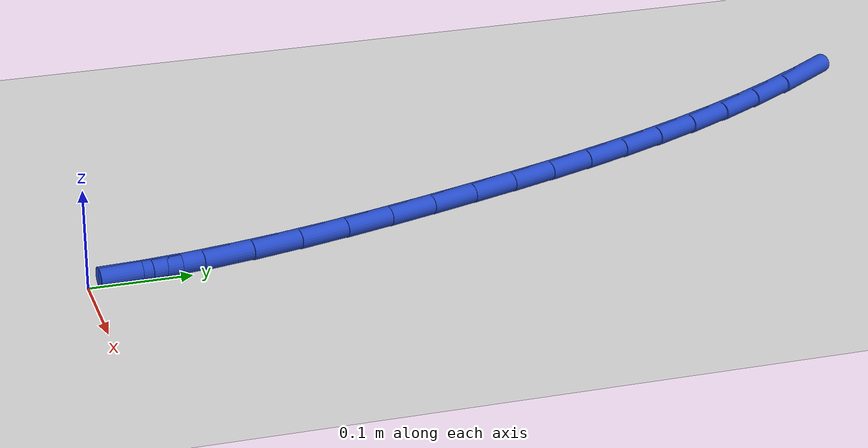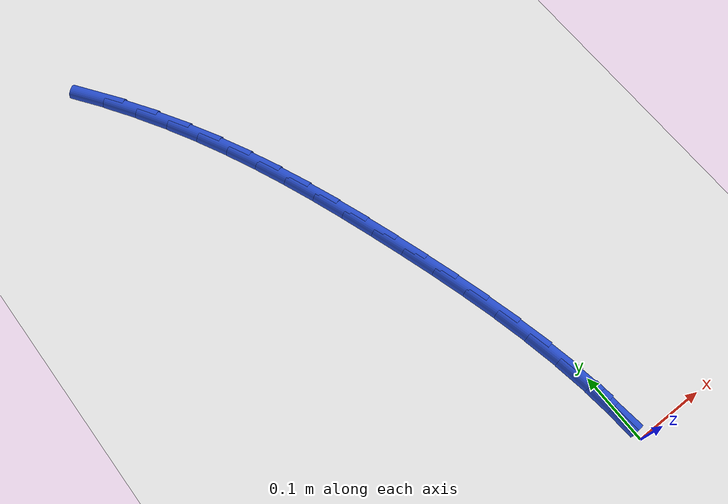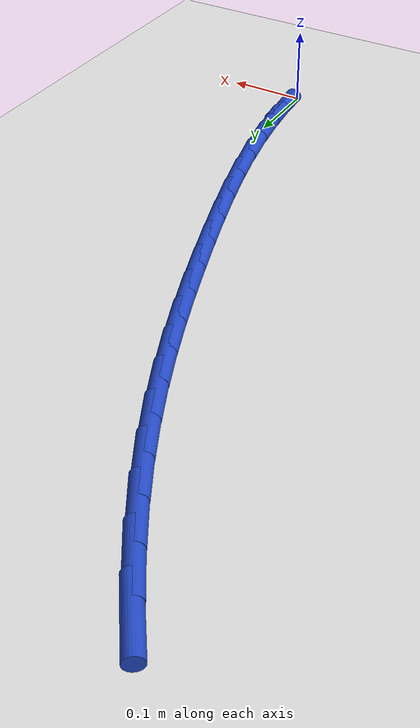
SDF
<sdf version="1.6">
 <world name="default">
  <model name="ground_plane">
   <static>1</static>
   <link name="link">
    <collision name="collision">
     <geometry><plane><normal>0 0 1</normal><size>100 100</size></plane></geometry>
     <surface><friction><ode><mu>100</mu><mu2>50</mu2></ode></friction></surface>
    </collision>
    <visual name="visual">
     <cast_shadows>0</cast_shadows>
     <geometry><plane><normal>0 0 1</normal><size>100 100</size></plane></geometry>
     <material>
      <script><uri>file://media/materials/scripts/gazebo.material</uri><name>Gazebo/WhiteGlow</name></script>
     </material>
    </visual>
   </link>
  </model>
  <model name="line">
   <link name="link_1">
    <pose>-0.0030384677710128165 0.050301003999730205 0.01 0 1.57 -1.455969346754686</pose>
    <collision name="collision">
     <geometry><cylinder><radius>0.01</radius><length>0.08</length></cylinder></geometry>
    </collision>
    <visual name="visual">
     <material>
      <script><name>Gazebo/Blue</name><uri>file://media/materials/scripts/gazebo.material</uri></script>
     </material>
     <geometry><cylinder><radius>0.01</radius><length>0.08</length></cylinder></geometry>
    </visual>
   </link>
   <link name="link_2">
    <pose>-0.008818111228535732 0.10041308665040802 0.01 0 1.57 -1.4082257853372324</pose>
    <collision name="collision">
     <geometry><cylinder><radius>0.01</radius><length>0.08</length></cylinder></geometry>
    </collision>
    <visual name="visual">
     <material>
      <script><name>Gazebo/Blue</name><uri>file://media/materials/scripts/gazebo.material</uri></script>
     </material>
     <geometry><cylinder><radius>0.01</radius><length>0.08</length></cylinder></geometry>
    </visual>
   </link>
   <link name="link_3">
    <pose>-0.016990717426067944 0.15024056780476108 0.01 0 1.57 -1.3670323966876647</pose>
    <collision name="collision">
     <geometry><cylinder><radius>0.01</radius><length>0.08</length></cylinder></geometry>
    </collision>
    <visual name="visual">
     <material>
      <script><name>Gazebo/Blue</name><uri>file://media/materials/scripts/gazebo.material</uri></script>
     </material>
     <geometry><cylinder><radius>0.01</radius><length>0.08</length></cylinder></geometry>
    </visual>
   </link>
   <link name="link_4">
    <pose>-0.0272080734171087 0.19968776731551696 0.01 0 1.57 -1.332149021264324</pose>
    <collision name="collision">
     <geometry><cylinder><radius>0.01</radius><length>0.08</length></cylinder></geometry>
    </collision>
    <visual name="visual">
     <material>
      <script><name>Gazebo/Blue</name><uri>file://media/materials/scripts/gazebo.material</uri></script>
     </material>
     <geometry><cylinder><radius>0.01</radius><length>0.08</length></cylinder></geometry>
    </visual>
   </link>
   <link name="link_5">
    <pose>-0.039121966255157195 0.24865900503540295 0.01 0 1.57 -1.303346064127017</pose>
    <collision name="collision">
     <geometry><cylinder><radius>0.01</radius><length>0.08</length></cylinder></geometry>
    </collision>
    <visual name="visual">
     <material>
      <script><name>Gazebo/Blue</name><uri>file://media/materials/scripts/gazebo.material</uri></script>
     </material>
     <geometry><cylinder><radius>0.01</radius><length>0.08</length></cylinder></geometry>
    </visual>
   </link>
   <link name="link_6">
    <pose>-0.052384182993712704 0.2970586008171468 0.01 0 1.57 -1.28044226873742</pose>
    <collision name="collision">
     <geometry><cylinder><radius>0.01</radius><length>0.08</length></cylinder></geometry>
    </collision>
    <visual name="visual">
     <material>
      <script><name>Gazebo/Blue</name><uri>file://media/materials/scripts/gazebo.material</uri></script>
     </material>
     <geometry><cylinder><radius>0.01</radius><length>0.08</length></cylinder></geometry>
    </visual>
   </link>
   <link name="link_7">
    <pose>-0.0666465106862744 0.34479087451347584 0.01 0 1.57 -1.2633341415838295</pose>
    <collision name="collision">
     <geometry><cylinder><radius>0.01</radius><length>0.08</length></cylinder></geometry>
    </collision>
    <visual name="visual">
     <material>
      <script><name>Gazebo/Blue</name><uri>file://media/materials/scripts/gazebo.material</uri></script>
     </material>
     <geometry><cylinder><radius>0.01</radius><length>0.08</length></cylinder></geometry>
    </visual>
   </link>
   <link name="link_8">
    <pose>-0.08156073638634156 0.3917601459771177 0.01 0 1.57 -1.251466192862059</pose>
    <collision name="collision">
     <geometry><cylinder><radius>0.01</radius><length>0.08</length></cylinder></geometry>
    </collision>
    <visual name="visual">
     <material>
      <script><name>Gazebo/Blue</name><uri>file://media/materials/scripts/gazebo.material</uri></script>
     </material>
     <geometry><cylinder><radius>0.01</radius><length>0.08</length></cylinder></geometry>
    </visual>
   </link>
   <link name="link_9">
    <pose>-0.09681104614175311 0.43788289748606046 0.01 0 1.57 -1.2386897921610731</pose>
    <collision name="collision">
     <geometry><cylinder><radius>0.01</radius><length>0.08</length></cylinder></geometry>
    </collision>
    <visual name="visual">
     <material>
      <script><name>Gazebo/Blue</name><uri>file://media/materials/scripts/gazebo.material</uri></script>
     </material>
     <geometry><cylinder><radius>0.01</radius><length>0.08</length></cylinder></geometry>
    </visual>
   </link>
   <link name="link_10">
    <pose>-0.11244404119998534 0.48321166022563466 0.01 0 1.57 -1.2211372713598931</pose>
    <collision name="collision">
     <geometry><cylinder><radius>0.01</radius><length>0.08</length></cylinder></geometry>
    </collision>
    <visual name="visual">
     <material>
      <script><name>Gazebo/Blue</name><uri>file://media/materials/scripts/gazebo.material</uri></script>
     </material>
     <geometry><cylinder><radius>0.01</radius><length>0.08</length></cylinder></geometry>
    </visual>
   </link>
   <link name="link_11">
    <pose>-0.1287335579118084 0.5278842683363002 0.01 0 1.57 -1.1988873354360097</pose>
    <collision name="collision">
     <geometry><cylinder><radius>0.01</radius><length>0.08</length></cylinder></geometry>
    </collision>
    <visual name="visual">
     <material>
      <script><name>Gazebo/Blue</name><uri>file://media/materials/scripts/gazebo.material</uri></script>
     </material>
     <geometry><cylinder><radius>0.01</radius><length>0.08</length></cylinder></geometry>
    </visual>
   </link>
   <link name="link_12">
    <pose>-0.1459569348872716 0.5720398706896564 0.01 0 1.57 -1.172238162713326</pose>
    <collision name="collision">
     <geometry><cylinder><radius>0.01</radius><length>0.08</length></cylinder></geometry>
    </collision>
    <visual name="visual">
     <material>
      <script><name>Gazebo/Blue</name><uri>file://media/materials/scripts/gazebo.material</uri></script>
     </material>
     <geometry><cylinder><radius>0.01</radius><length>0.08</length></cylinder></geometry>
    </visual>
   </link>
   <link name="link_13">
    <pose>-0.16439151073642422 0.6158176161573022 0.01 0 1.57 -1.1416468926700536</pose>
    <collision name="collision">
     <geometry><cylinder><radius>0.01</radius><length>0.08</length></cylinder></geometry>
    </collision>
    <visual name="visual">
     <material>
      <script><name>Gazebo/Blue</name><uri>file://media/materials/scripts/gazebo.material</uri></script>
     </material>
     <geometry><cylinder><radius>0.01</radius><length>0.08</length></cylinder></geometry>
    </visual>
   </link>
   <link name="link_14">
    <pose>-0.1843146240693154 0.6593566536108365 0.01 0 1.57 -1.1077151782764307</pose>
    <collision name="collision">
     <geometry><cylinder><radius>0.01</radius><length>0.08</length></cylinder></geometry>
    </collision>
    <visual name="visual">
     <material>
      <script><name>Gazebo/Blue</name><uri>file://media/materials/scripts/gazebo.material</uri></script>
     </material>
     <geometry><cylinder><radius>0.01</radius><length>0.08</length></cylinder></geometry>
    </visual>
   </link>
   <link name="link_15">
    <pose>-0.2060036134959944 0.7027961319218579 0.01 0 1.57 -1.0711598549641144</pose>
    <collision name="collision">
     <geometry><cylinder><radius>0.01</radius><length>0.08</length></cylinder></geometry>
    </collision>
    <visual name="visual">
     <material>
      <script><name>Gazebo/Blue</name><uri>file://media/materials/scripts/gazebo.material</uri></script>
     </material>
     <geometry><cylinder><radius>0.01</radius><length>0.08</length></cylinder></geometry>
    </visual>
   </link>
   <link name="link_16">
    <pose>-0.2297358176265104 0.7462751999619658 0.01 0 1.57 -1.0327706123056777</pose>
    <collision name="collision">
     <geometry><cylinder><radius>0.01</radius><length>0.08</length></cylinder></geometry>
    </collision>
    <visual name="visual">
     <material>
      <script><name>Gazebo/Blue</name><uri>file://media/materials/scripts/gazebo.material</uri></script>
     </material>
     <geometry><cylinder><radius>0.01</radius><length>0.08</length></cylinder></geometry>
    </visual>
   </link>
   <link name="link_17">
    <pose>-0.25578857507091274 0.7899330066027589 0.01 0 1.57 -0.9933596103766285</pose>
    <collision name="collision">
     <geometry><cylinder><radius>0.01</radius><length>0.08</length></cylinder></geometry>
    </collision>
    <visual name="visual">
     <material>
      <script><name>Gazebo/Blue</name><uri>file://media/materials/scripts/gazebo.material</uri></script>
     </material>
     <geometry><cylinder><radius>0.01</radius><length>0.08</length></cylinder></geometry>
    </visual>
   </link>
   <link name="link_18">
    <pose>-0.28443922443925057 0.8339087007158362 0.01 0 1.57 -0.9537100993118686</pose>
    <collision name="collision">
     <geometry><cylinder><radius>0.01</radius><length>0.08</length></cylinder></geometry>
    </collision>
    <visual name="visual">
     <material>
      <script><name>Gazebo/Blue</name><uri>file://media/materials/scripts/gazebo.material</uri></script>
     </material>
     <geometry><cylinder><radius>0.01</radius><length>0.08</length></cylinder></geometry>
    </visual>
   </link>
   <link name="link_151">
    <pose>-0.003109731954741242 0.05028980070668899 0.01 0 1.57 -1.5090387258842024</pose>
    <collision name="collision">
     <geometry><cylinder><radius>0.01</radius><length>0.08</length></cylinder></geometry>
    </collision>
    <visual name="visual">
     <material>
      <script><name>Gazebo/Blue</name><uri>file://media/materials/scripts/gazebo.material</uri></script>
     </material>
     <geometry><cylinder><radius>0.01</radius><length>0.08</length></cylinder></geometry>
    </visual>
   </link>
  </model>
 </world>
</sdf>
